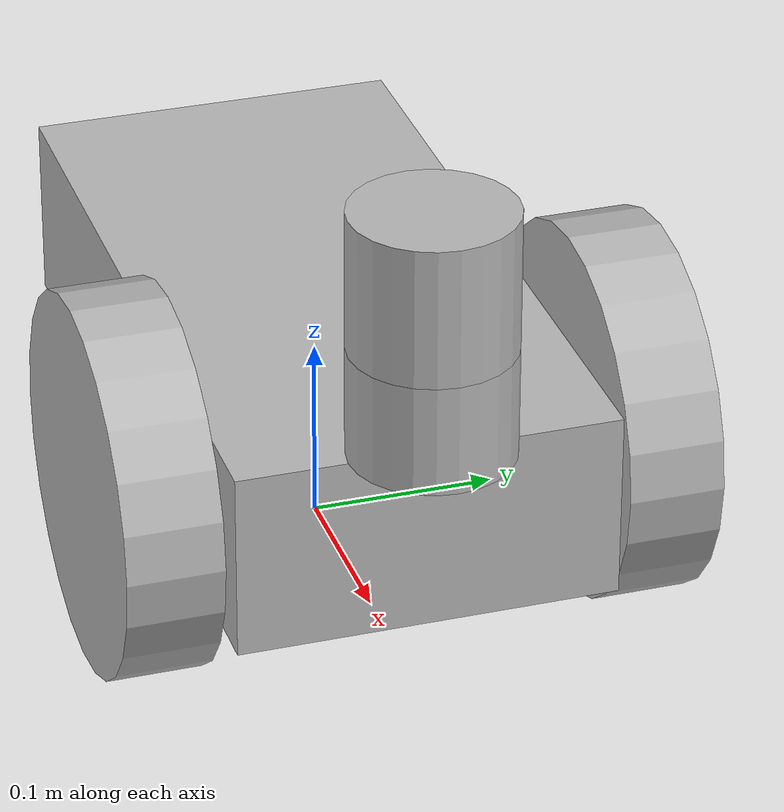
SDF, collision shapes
<?xml version='1.0'?>
<sdf version='1.4'>
  <model name="my_robot">
 <static>false</static>
<link name='chassis'>
            <pose>0 0 .1 0 0 0</pose>

            <collision name='collision'>
              <geometry>
                <box>
                  <size>.4 .2 .1</size>
                </box>
              </geometry>
            </collision>

            <visual name='visual'>
      <geometry>
        <mesh>
          <uri>model://gazebo_models/pioneer2dx/meshes/chassis.dae</uri>
          <pose>0 0 0.05 0 0 0</pose>
          <scale>0.9 0.5 0.5</scale>
        </mesh>
      </geometry>
    </visual>
  <collision name='caster_collision'>
            <pose>-0.15 0 -0.05 0 0 0</pose>
            <geometry>
                <sphere>
                <radius>.05</radius>
              </sphere>
            </geometry>

            <surface>
              <friction>
                <ode>
                  <mu>0</mu>
                  <mu2>0</mu2>
                  <slip1>1.0</slip1>
                  <slip2>1.0</slip2>
                </ode>
              </friction>
            </surface>
          </collision>

          <visual name='caster_visual'>
            <pose>-0.15 0 -0.05 0 0 0</pose>
            <geometry>
              <sphere>
                <radius>.05</radius>
              </sphere>
            </geometry>
          </visual>
   </link>
  <link name="left_wheel">
        <pose>0.1 0.13 0.1 0 1.5707 1.5707</pose>
        <collision name="collision">
          <geometry>
            <cylinder>
              <radius>.1</radius>
              <length>.05</length>
            </cylinder>
          </geometry>
        </collision>
        <visual name="visual">
          <geometry>
            <cylinder>
              <radius>.1</radius>
              <length>.05</length>
            </cylinder>
          </geometry>
        </visual>
      </link>
   <link name="right_wheel">
        <pose>0.1 -0.13 0.1 0 1.5707 1.5707</pose>
        <collision name="collision">
          <geometry>
            <cylinder>
              <radius>.1</radius>
              <length>.05</length>
            </cylinder>
          </geometry>
        </collision>
        <visual name="visual">
          <geometry>
            <cylinder>
              <radius>.1</radius>
              <length>.05</length>
            </cylinder>
          </geometry>
        </visual>
      </link>
 <joint type="revolute" name="left_wheel_hinge">
        <pose>0 0 -0.03 0 0 0</pose>
        <child>left_wheel</child>
        <parent>chassis</parent>
        <axis>
          <xyz>0 1 0</xyz>
        </axis>
      </joint>

      <joint type="revolute" name="right_wheel_hinge">
        <pose>0 0 0.03 0 0 0</pose>
        <child>right_wheel</child>
        <parent>chassis</parent>
        <axis>
          <xyz>0 1 0</xyz>
        </axis>
      </joint>
      <include>
      <uri>model://velodyne_hdl32</uri>
      <pose>0.2 0 0.15 0 0 0</pose>
    </include>
    <joint name="hokuyo_joint" type="fixed">
      <child>velodyne::base</child>
      <parent>chassis</parent>
      <plugin name="velodyne_control" filename="libvelodyne_plugin.so">
        <velocity>25</velocity>
      </plugin>

    </joint>

    <plugin name="left_wheel_vel" filename="libleft_wheel_plugin.so">
        <velocity>5</velocity>
      </plugin>

      <plugin name="right_wheel_vel" filename="libright_wheel_plugin.so">
        <velocity>5</velocity>
      </plugin>

  </model>
</sdf>

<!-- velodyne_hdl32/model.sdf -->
<sdf version="1.5">
  <model name="velodyne">
    <link name="base">
      <pose>0 0 0.029335 0 0 0</pose>
      <inertial>
        <mass>0.1</mass>
        <inertia>
          <ixx>0.001087473</ixx>
          <iyy>0.001087473</iyy>
          <izz>0.001092437</izz>
          <ixy>0</ixy>
          <ixz>0</ixz>
          <iyz>0</iyz>
        </inertia>
      </inertial>
      <collision name="base_collision">
        <geometry>
          <cylinder>
            <radius>.04267</radius>
            <length>.05867</length>
          </cylinder>
        </geometry>
      </collision>
      <visual name="base_visual">
        <pose>0 0 -0.029335 0 0 0</pose>
        <geometry>
          <mesh>
            <uri>model://velodyne_hdl32/meshes/velodyne_base.dae</uri>
          </mesh>
        </geometry>
      </visual>
    </link>

    <link name="top">
      <pose>0 0 0.095455 0 0 0</pose>
      <inertial>
        <mass>0.1</mass>
        <inertia>
          <ixx>0.000090623</ixx>
          <iyy>0.000090623</iyy>
          <izz>0.000091036</izz>
          <ixy>0</ixy>
          <ixz>0</ixz>
          <iyz>0</iyz>
        </inertia>
      </inertial>
      <collision name="top_collision">
        <geometry>
          <cylinder>
            <radius>0.04267</radius>
            <length>0.07357</length>
          </cylinder>
        </geometry>
      </collision>
      <visual name="top_visual">
        <pose>0 0 -0.0376785 0 0 1.5707</pose>
        <geometry>
          <mesh>
            <uri>model://velodyne_hdl32/meshes/velodyne_top.dae</uri>
          </mesh>
        </geometry>
      </visual>

      <sensor type="ray" name="sensor">
        <pose>0 0 -0.004645 1.5707 0 0</pose>
        <visualize>true</visualize>
        <update_rate>30</update_rate>
        <ray>
          <noise>
            <type>gaussian</type>
            <mean>0.0</mean>
            <stddev>0.1</stddev>
          </noise>

          <scan>
            <horizontal>
              <samples>32</samples>
              <resolution>1</resolution>
              <min_angle>-0.53529248</min_angle>
              <max_angle>0.18622663</max_angle>
            </horizontal>
          </scan>

          <range>
            <min>0.1</min>
            <max>70</max>
            <resolution>0.02</resolution>
          </range>
        </ray>
      </sensor>
    </link>

    <joint type="revolute" name="joint">
      <pose>0 0 -0.036785 0 0 0</pose>
      <parent>base</parent>
      <child>top</child>
      <axis>
        <xyz>0 0 1</xyz>
        <limit>
          <lower>-10000000000000000</lower>
          <upper>10000000000000000</upper>
        </limit>
      </axis>
    </joint>
  </model>
</sdf>
